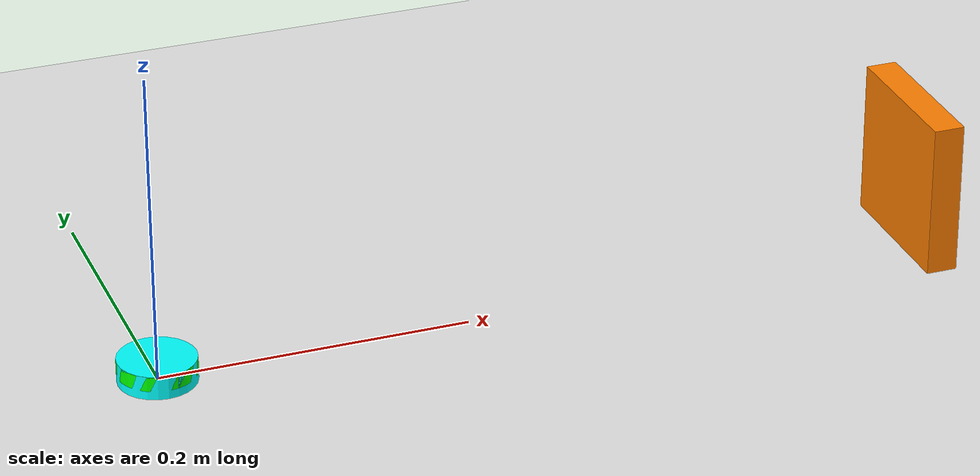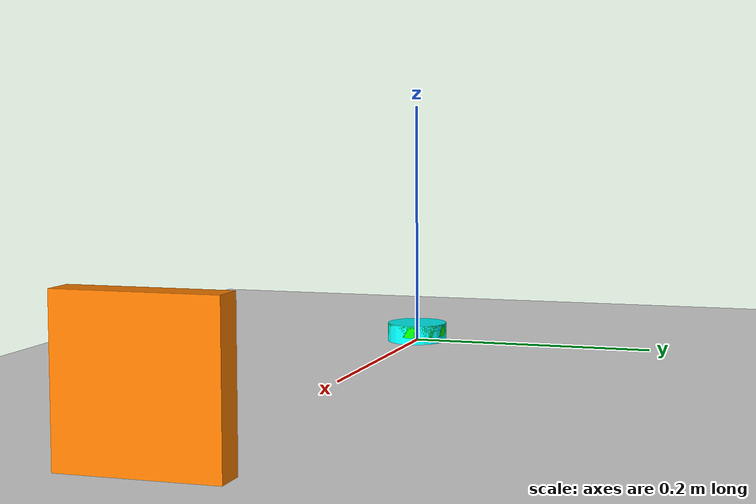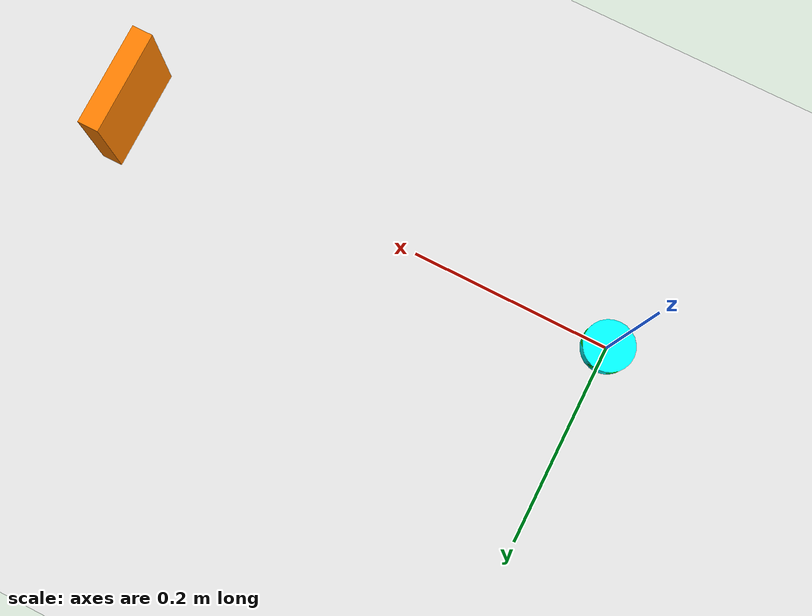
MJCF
<mujoco model="pusher_plane_2d">
    <compiler angle="radian" inertiafromgeom="true"/>
    <default>
        <joint armature="1" damping="1" limited="true"/>
        <geom contype="0" friction="1. 0.1 0.1" rgba="0.7 0.7 0 1" solimp=".5 .5 .001" solref=".02 1"/>
    </default>
    <option integrator="RK4" timestep="0.01"/>
    <worldbody>
        <!-- Ground -->
        <geom conaffinity="1" contype="1" name="ground" pos="0 0 0" rgba="0.9 0.9 0.9 1" size="1 1 10" type="plane" condim="3"/>
        <!-- Ground Center -->
        <body name="center" pos="0. 0. 0.">
            <geom conaffinity="0" contype="0" name="center" pos="0 0 0" rgba="0. 0. 1.0 1" size=".009" type="sphere"/>
        </body>
        <!-- Pusher -->
        <body name="pusher" pos="0.5 0 .055">
            <geom rgba="1 0.5 0 1" type="box" size="0.01 0.05 0.05" density='1.0' contype="1" conaffinity="1" condim="3" friction="0.01 0.01 0.01"/>
            <joint name="push_slidex" type="slide" pos="0 0 0" axis="1 0 0" range="-10.3213 10.3" damping="0."/>
            <joint name="push_slidey" type="slide" pos="0 0 0" axis="0 1 0" range="-10.3213 10.3" damping="0."/>
            <joint name="push_hinge" type="hinge" pos="0 0 0" axis="0 0 1" range="-1000. 1000.0" damping="0."/>
        </body>
        <!-- Object -->
        <body name="object" pos="0. 0. 0." >
            <geom rgba="0 1 1 1" type="cylinder" size="0.025 0.015 0.05" contype="1" friction="0.5 0.1 0.1" conaffinity="1"/>
            <joint name="object_slidex" type="slide" pos="0 0 0" axis="1 0 0" range="-10.3213 10.3" damping="1."/>
            <joint name="object_slidey" type="slide" pos="0 0 0" axis="0 1 0" range="-10.3213 10.3" damping="1."/>
            <joint name="object_slidez" type="slide" pos="0 0 0" axis="0 0 1" range="-10.3213 10.3" damping="0.5"/>
        </body>
        <!-- Object Goal -->
        <body name="goal" pos="0. 0. 0.01">
            <geom rgba="0 1 0 1" type="cylinder" size="0.025 0.005 0.05" contype="0" conaffinity="0"/>
            <joint name="goal_slidex" type="slide" pos="0 0 0" axis="1 0 0" range="-10.3213 10.3" damping="0."/>
            <joint name="goal_slidey" type="slide" pos="0 0 0" axis="0 1 0" range="-10.3213 10.3" damping="0."/>
        </body>
        <camera euler="0 0 0" fovy="50" name="top_cam" pos="0 0 1.0"></camera>

    </worldbody>
    <actuator>
        <motor ctrllimited="true" ctrlrange="-1.0 1.0" gear="2000.0" joint="push_slidex"/>
        <motor ctrllimited="true" ctrlrange="-1.0 1.0" gear="2000.0" joint="push_slidey"/>
        <motor ctrllimited="true" ctrlrange="-1.0 1.0" gear="2000.0" joint="push_hinge"/>
    </actuator>
</mujoco>
